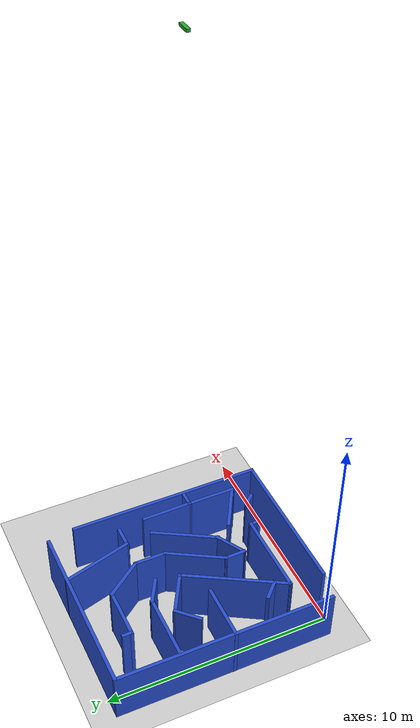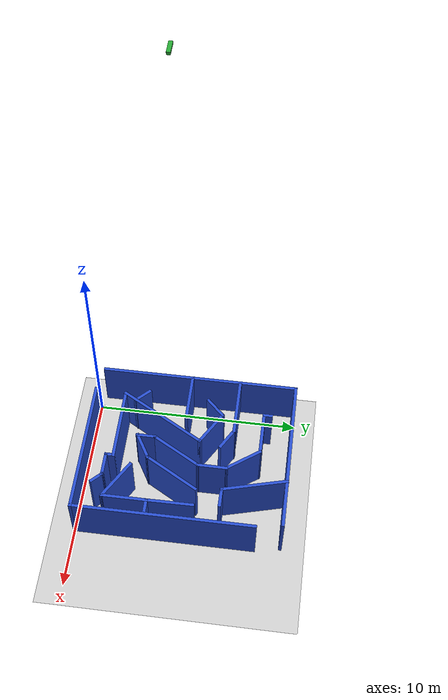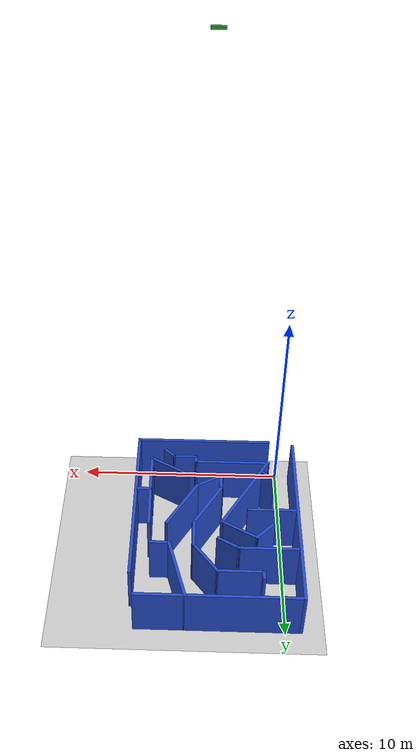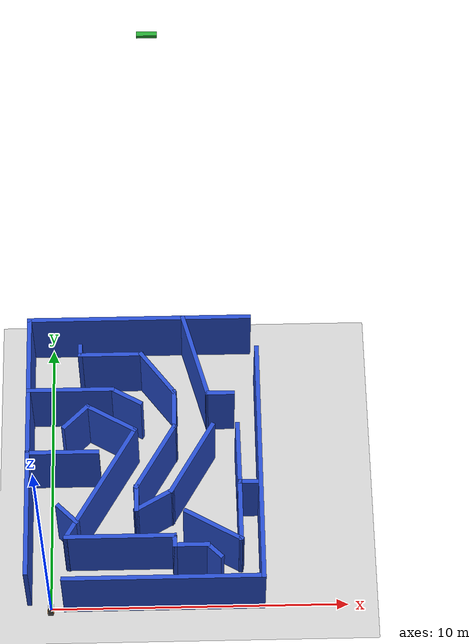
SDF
<sdf version="1.7">
 <world name="default">
  <light name="sun" type="directional">
   <pose>0 0 10 0 -0 0</pose>
   <diffuse>0.8 0.8 0.8 1</diffuse>
   <specular>0.2 0.2 0.2 1</specular>
   <attenuation>
    <range>1000</range>
    <constant>0.9</constant>
    <linear>0.01</linear>
    <quadratic>0.001</quadratic>
   </attenuation>
   <direction>-0.5 0.1 -0.9</direction>
   <spot><inner_angle>0</inner_angle><outer_angle>0</outer_angle><falloff>0</falloff></spot>
  </light>
  <model name="ground_plane">
   <static>1</static>
   <link name="link">
    <collision name="collision">
     <geometry><plane><normal>0 0 1</normal><size>100 100</size></plane></geometry>
     <surface><friction><ode><mu>100</mu><mu2>50</mu2></ode></friction></surface>
    </collision>
    <visual name="visual">
     <cast_shadows>0</cast_shadows>
     <geometry><plane><normal>0 0 1</normal><size>100 100</size></plane></geometry>
     <material>
      <script><uri>file://media/materials/scripts/gazebo.material</uri><name>Gazebo/Grey</name></script>
     </material>
    </visual>
   </link>
  </model>
  <gravity>0 0 -9.8</gravity>
  <magnetic_field>6e-06 2.3e-05 -4.2e-05</magnetic_field>
  <atmosphere type="adiabatic"/>
  <physics type="ode">
   <max_step_size>0.001</max_step_size>
   <real_time_factor>1</real_time_factor>
   <real_time_update_rate>1000</real_time_update_rate>
  </physics>
  <scene><ambient>0.4 0.4 0.4 1</ambient><background>0.7 0.7 0.7 1</background><shadows>0</shadows></scene>
  <spherical_coordinates>
   <surface_model>EARTH_WGS84</surface_model>
   <latitude_deg>0</latitude_deg>
   <longitude_deg>0</longitude_deg>
   <elevation>0</elevation>
   <heading_deg>0</heading_deg>
  </spherical_coordinates>
  <model name="camera">
   <link name="link_0">
    <inertial>
     <mass>0.00707571</mass>
     <inertia>
      <ixx>1.66494e-05</ixx>
      <ixy>0</ixy>
      <ixz>0</ixz>
      <iyy>0.000165453</iyy>
      <iyz>0</iyz>
      <izz>0.000169817</izz>
     </inertia>
    </inertial>
    <visual name="visual">
     <geometry><box><size>0.519789 0.133487 0.102067</size></box></geometry>
     <material>
      <lighting>1</lighting>
      <script><uri>file://media/materials/scripts/gazebo.material</uri><name>Gazebo/Green</name></script>
      <shader type="pixel"/>
     </material>
     <cast_shadows>0</cast_shadows>
    </visual>
    <collision name="collision">
     <geometry><box><size>0.519789 0.133487 0.102067</size></box></geometry>
     <surface>
      <friction>
       <ode><mu>1</mu><mu2>1</mu2><fdir1>0 0 0</fdir1><slip1>0</slip1><slip2>0</slip2></ode>
       <torsional>
        <coefficient>1</coefficient>
        <patch_radius>0</patch_radius>
        <surface_radius>0</surface_radius>
        <use_patch_radius>1</use_patch_radius>
        <ode><slip>0</slip></ode>
       </torsional>
      </friction>
      <bounce><restitution_coefficient>0</restitution_coefficient><threshold>1e+06</threshold></bounce>
      <contact>
       <collide_without_contact>0</collide_without_contact>
       <collide_without_contact_bitmask>1</collide_without_contact_bitmask>
       <collide_bitmask>1</collide_bitmask>
       <ode>
        <soft_cfm>0</soft_cfm>
        <soft_erp>0.2</soft_erp>
        <kp>1e+13</kp>
        <kd>1</kd>
        <max_vel>0.01</max_vel>
        <min_depth>0</min_depth>
       </ode>
       <bullet>
        <split_impulse>1</split_impulse>
        <split_impulse_penetration_threshold>-0.01</split_impulse_penetration_threshold>
        <soft_cfm>0</soft_cfm>
        <soft_erp>0.2</soft_erp>
        <kp>1e+13</kp>
        <kd>1</kd>
       </bullet>
      </contact>
     </surface>
    </collision>
    <sensor name="camera" type="camera">
     <pose>0 0 0 0 1.57 0</pose>
     <always_on>1</always_on>
     <visualize>1</visualize>
     <update_rate>30</update_rate>
     <camera name="Maze_Upper_Camera">
      <horizontal_fov>1.0856</horizontal_fov>
      <image><width>1280</width><height>720</height><format>R8G8B8</format></image>
      <clip><near>0.03</near><far>100</far></clip>
      <noise><type>gaussian</type><mean>0</mean><stddev>0.007</stddev></noise>
     </camera>
     <plugin name="camera_driver" filename="libgazebo_ros_camera.so"/>
    </sensor>
   </link>
   <static>1</static>
   <pose>3.83866 4.77512 25.4161 0 -0 0</pose>
  </model>
  <model name="maze_2">
   <pose>3.19542 4.92683 0 0 -0 0</pose>
   <link name="Wall_12">
    <collision name="Wall_12_Collision">
     <geometry><box><size>8.75 0.15 2.5</size></box></geometry>
     <pose>0 0 1.25 0 -0 0</pose>
    </collision>
    <visual name="Wall_12_Visual">
     <pose>0 0 1.25 0 -0 0</pose>
     <geometry><box><size>8.75 0.15 2.5</size></box></geometry>
     <material>
      <script><uri>file://media/materials/scripts/gazebo.material</uri><name>Gazebo/Blue</name></script>
      <ambient>0.996078 0.47451 0.0196078 1</ambient>
     </material>
     <meta><layer>0</layer></meta>
    </visual>
    <pose>3.92259 -0.630829 0 0 -0 -1.5708</pose>
   </link>
   <link name="Wall_13">
    <collision name="Wall_13_Collision">
     <geometry><box><size>6.75 0.15 2.5</size></box></geometry>
     <pose>0 0 1.25 0 -0 0</pose>
    </collision>
    <visual name="Wall_13_Visual">
     <pose>0 0 1.25 0 -0 0</pose>
     <geometry><box><size>6.75 0.15 2.5</size></box></geometry>
     <material>
      <script><uri>file://media/materials/scripts/gazebo.material</uri><name>Gazebo/Blue</name></script>
      <ambient>0.996078 0.47451 0.0196078 1</ambient>
     </material>
     <meta><layer>0</layer></meta>
    </visual>
    <pose>0.622594 -4.93083 0 0 -0 3.14159</pose>
   </link>
   <link name="Wall_15">
    <collision name="Wall_15_Collision">
     <geometry><box><size>4.75 0.15 2.5</size></box></geometry>
     <pose>0 0 1.25 0 -0 0</pose>
    </collision>
    <visual name="Wall_15_Visual">
     <pose>0 0 1.25 0 -0 0</pose>
     <geometry><box><size>4.75 0.15 2.5</size></box></geometry>
     <material>
      <script><uri>file://media/materials/scripts/gazebo.material</uri><name>Gazebo/Blue</name></script>
      <ambient>0 0 0 1</ambient>
     </material>
     <meta><layer>0</layer></meta>
    </visual>
    <pose>-1.44258 -1.42975 0 0 -0 1.0472</pose>
   </link>
   <link name="Wall_16">
    <collision name="Wall_16_Collision">
     <geometry><box><size>2 0.15 2.5</size></box></geometry>
     <pose>0 0 1.25 0 -0 0</pose>
    </collision>
    <visual name="Wall_16_Visual">
     <pose>0 0 1.25 0 -0 0</pose>
     <geometry><box><size>2 0.15 2.5</size></box></geometry>
     <material>
      <script><uri>file://media/materials/scripts/gazebo.material</uri><name>Gazebo/Blue</name></script>
      <ambient>0 0 0 1</ambient>
     </material>
     <meta><layer>0</layer></meta>
    </visual>
    <pose>-1.09366 1.02461 0 0 -0 2.61799</pose>
   </link>
   <link name="Wall_18">
    <collision name="Wall_18_Collision">
     <geometry><box><size>1 0.15 2.5</size></box></geometry>
     <pose>0 0 1.25 0 -0 0</pose>
    </collision>
    <visual name="Wall_18_Visual">
     <pose>0 0 1.25 0 -0 0</pose>
     <geometry><box><size>1 0.15 2.5</size></box></geometry>
     <material>
      <script><uri>file://media/materials/scripts/gazebo.material</uri><name>Gazebo/Blue</name></script>
      <ambient>0 0 0 1</ambient>
     </material>
     <meta><layer>0</layer></meta>
    </visual>
    <pose>-2.5473 -2.56248 0 0 -0 2.35619</pose>
   </link>
   <link name="Wall_20">
    <collision name="Wall_20_Collision">
     <geometry><box><size>2.5 0.15 2.5</size></box></geometry>
     <pose>0 0 1.25 0 -0 0</pose>
    </collision>
    <visual name="Wall_20_Visual">
     <pose>0 0 1.25 0 -0 0</pose>
     <geometry><box><size>2.5 0.15 2.5</size></box></geometry>
     <material>
      <script><uri>file://media/materials/scripts/gazebo.material</uri><name>Gazebo/Blue</name></script>
      <ambient>0 0 0 1</ambient>
     </material>
     <meta><layer>0</layer></meta>
    </visual>
    <pose>-2.74759 -0.256182 0 0 -0 0</pose>
   </link>
   <link name="Wall_22">
    <collision name="Wall_22_Collision">
     <geometry><box><size>1.25 0.15 2.5</size></box></geometry>
     <pose>0 0 1.25 0 -0 0</pose>
    </collision>
    <visual name="Wall_22_Visual">
     <pose>0 0 1.25 0 -0 0</pose>
     <geometry><box><size>1.25 0.15 2.5</size></box></geometry>
     <material>
      <script><uri>file://media/materials/scripts/gazebo.material</uri><name>Gazebo/Blue</name></script>
      <ambient>0 0 0 1</ambient>
     </material>
     <meta><layer>0</layer></meta>
    </visual>
    <pose>-2.28364 1.0982 0 0 -0 -2.35619</pose>
   </link>
   <link name="Wall_24">
    <collision name="Wall_24_Collision">
     <geometry><box><size>3 0.15 2.5</size></box></geometry>
     <pose>0 0 1.25 0 -0 0</pose>
    </collision>
    <visual name="Wall_24_Visual">
     <pose>0 0 1.25 0 -0 0</pose>
     <geometry><box><size>3 0.15 2.5</size></box></geometry>
     <material>
      <script><uri>file://media/materials/scripts/gazebo.material</uri><name>Gazebo/Blue</name></script>
      <ambient>0 0 0 1</ambient>
     </material>
     <meta><layer>0</layer></meta>
    </visual>
    <pose>-2.48295 2.1404 0 0 -0 0</pose>
   </link>
   <link name="Wall_25">
    <collision name="Wall_25_Collision">
     <geometry><box><size>1.25 0.15 2.5</size></box></geometry>
     <pose>0 0 1.25 0 -0 0</pose>
    </collision>
    <visual name="Wall_25_Visual">
     <pose>0 0 1.25 0 -0 0</pose>
     <geometry><box><size>1.25 0.15 2.5</size></box></geometry>
     <material>
      <script><uri>file://media/materials/scripts/gazebo.material</uri><name>Gazebo/Blue</name></script>
      <ambient>0 0 0 1</ambient>
     </material>
     <meta><layer>0</layer></meta>
    </visual>
    <pose>-0.581633 1.8654 0 0 -0 -0.523599</pose>
   </link>
   <link name="Wall_27">
    <collision name="Wall_27_Collision">
     <geometry><box><size>3.75 0.15 2.5</size></box></geometry>
     <pose>0 0 1.25 0 -0 0</pose>
    </collision>
    <visual name="Wall_27_Visual">
     <pose>0 0 1.25 0 -0 0</pose>
     <geometry><box><size>3.75 0.15 2.5</size></box></geometry>
     <material>
      <script><uri>file://media/materials/scripts/gazebo.material</uri><name>Gazebo/Blue</name></script>
      <ambient>0 0 0 1</ambient>
     </material>
     <meta><layer>0</layer></meta>
    </visual>
    <pose>-0.792584 -3.42161 0 0 -0 0</pose>
   </link>
   <link name="Wall_29">
    <collision name="Wall_29_Collision">
     <geometry><box><size>0.5 0.15 2.5</size></box></geometry>
     <pose>0 0 1.25 0 -0 0</pose>
    </collision>
    <visual name="Wall_29_Visual">
     <pose>0 0 1.25 0 -0 0</pose>
     <geometry><box><size>0.5 0.15 2.5</size></box></geometry>
     <material>
      <script><uri>file://media/materials/scripts/gazebo.material</uri><name>Gazebo/Blue</name></script>
      <ambient>0 0 0 1</ambient>
     </material>
     <meta><layer>0</layer></meta>
    </visual>
    <pose>1.00742 -3.59661 0 0 -0 -1.5708</pose>
   </link>
   <link name="Wall_3">
    <collision name="Wall_3_Collision">
     <geometry><box><size>9.75 0.15 2.5</size></box></geometry>
     <pose>0 0 1.25 0 -0 0</pose>
    </collision>
    <visual name="Wall_3_Visual">
     <pose>0 0 1.25 0 -0 0</pose>
     <geometry><box><size>9.75 0.15 2.5</size></box></geometry>
     <material>
      <script><uri>file://media/materials/scripts/gazebo.material</uri><name>Gazebo/Blue</name></script>
      <ambient>0.996078 0.47451 0.0196078 1</ambient>
     </material>
     <meta><layer>0</layer></meta>
    </visual>
    <pose>-3.91589 0.119305 0 0 -0 1.5708</pose>
   </link>
   <link name="Wall_30">
    <collision name="Wall_30_Collision">
     <geometry><box><size>1.25 0.15 2.5</size></box></geometry>
     <pose>0 0 1.25 0 -0 0</pose>
    </collision>
    <visual name="Wall_30_Visual">
     <pose>0 0 1.25 0 -0 0</pose>
     <geometry><box><size>1.25 0.15 2.5</size></box></geometry>
     <material>
      <script><uri>file://media/materials/scripts/gazebo.material</uri><name>Gazebo/Blue</name></script>
      <ambient>0 0 0 1</ambient>
     </material>
     <meta><layer>0</layer></meta>
    </visual>
    <pose>1.55741 -3.77161 0 0 -0 0</pose>
   </link>
   <link name="Wall_31">
    <collision name="Wall_31_Collision">
     <geometry><box><size>0.75 0.15 2.5</size></box></geometry>
     <pose>0 0 1.25 0 -0 0</pose>
    </collision>
    <visual name="Wall_31_Visual">
     <pose>0 0 1.25 0 -0 0</pose>
     <geometry><box><size>0.75 0.15 2.5</size></box></geometry>
     <material>
      <script><uri>file://media/materials/scripts/gazebo.material</uri><name>Gazebo/Blue</name></script>
      <ambient>0 0 0 1</ambient>
     </material>
     <meta><layer>0</layer></meta>
    </visual>
    <pose>2.31955 -3.98374 0 0 -0 -0.785398</pose>
   </link>
   <link name="Wall_34">
    <collision name="Wall_34_Collision">
     <geometry><box><size>2.25 0.15 2.5</size></box></geometry>
     <pose>0 0 1.25 0 -0 0</pose>
    </collision>
    <visual name="Wall_34_Visual">
     <pose>0 0 1.25 0 -0 0</pose>
     <geometry><box><size>2.25 0.15 2.5</size></box></geometry>
     <material>
      <script><uri>file://media/materials/scripts/gazebo.material</uri><name>Gazebo/Blue</name></script>
      <ambient>0 0 0 1</ambient>
     </material>
     <meta><layer>0</layer></meta>
    </visual>
    <pose>2.30704 -3.05659 0 0 -0 -0.523599</pose>
   </link>
   <link name="Wall_35">
    <collision name="Wall_35_Collision">
     <geometry><box><size>2.25 0.15 2.5</size></box></geometry>
     <pose>0 0 1.25 0 -0 0</pose>
    </collision>
    <visual name="Wall_35_Visual">
     <pose>0 0 1.25 0 -0 0</pose>
     <geometry><box><size>2.25 0.15 2.5</size></box></geometry>
     <material>
      <script><uri>file://media/materials/scripts/gazebo.material</uri><name>Gazebo/Blue</name></script>
      <ambient>0 0 0 1</ambient>
     </material>
     <meta><layer>0</layer></meta>
    </visual>
    <pose>3.21637 -2.53159 0 0 -0 1.5708</pose>
   </link>
   <link name="Wall_36">
    <collision name="Wall_36_Collision">
     <geometry><box><size>0.75 0.15 2.5</size></box></geometry>
     <pose>0 0 1.25 0 -0 0</pose>
    </collision>
    <visual name="Wall_36_Visual">
     <pose>0 0 1.25 0 -0 0</pose>
     <geometry><box><size>0.75 0.15 2.5</size></box></geometry>
     <material>
      <script><uri>file://media/materials/scripts/gazebo.material</uri><name>Gazebo/Blue</name></script>
      <ambient>0 0 0 1</ambient>
     </material>
     <meta><layer>0</layer></meta>
    </visual>
    <pose>3.51636 -1.48159 0 0 -0 0</pose>
   </link>
   <link name="Wall_39">
    <collision name="Wall_39_Collision">
     <geometry><box><size>1.5 0.15 2.5</size></box></geometry>
     <pose>0 0 1.25 0 -0 0</pose>
    </collision>
    <visual name="Wall_39_Visual">
     <pose>0 0 1.25 0 -0 0</pose>
     <geometry><box><size>1.5 0.15 2.5</size></box></geometry>
     <material>
      <script><uri>file://media/materials/scripts/gazebo.material</uri><name>Gazebo/Blue</name></script>
      <ambient>0 0 0 1</ambient>
     </material>
     <meta><layer>0</layer></meta>
    </visual>
    <pose>0.331293 -2.11272 0 0 -0 -2.61799</pose>
   </link>
   <link name="Wall_41">
    <collision name="Wall_41_Collision">
     <geometry><box><size>1 0.15 2.5</size></box></geometry>
     <pose>0 0 1.25 0 -0 0</pose>
    </collision>
    <visual name="Wall_41_Visual">
     <pose>0 0 1.25 0 -0 0</pose>
     <geometry><box><size>1 0.15 2.5</size></box></geometry>
     <material>
      <script><uri>file://media/materials/scripts/gazebo.material</uri><name>Gazebo/Blue</name></script>
      <ambient>0 0 0 1</ambient>
     </material>
     <meta><layer>0</layer></meta>
    </visual>
    <pose>-0.253274 -2.02522 0 0 -0 1.5708</pose>
   </link>
   <link name="Wall_42">
    <collision name="Wall_42_Collision">
     <geometry><box><size>2.75 0.15 2.5</size></box></geometry>
     <pose>0 0 1.25 0 -0 0</pose>
    </collision>
    <visual name="Wall_42_Visual">
     <pose>0 0 1.25 0 -0 0</pose>
     <geometry><box><size>2.75 0.15 2.5</size></box></geometry>
     <material>
      <script><uri>file://media/materials/scripts/gazebo.material</uri><name>Gazebo/Blue</name></script>
      <ambient>0 0 0 1</ambient>
     </material>
     <meta><layer>0</layer></meta>
    </visual>
    <pose>0.396726 -0.474385 0 0 -0 1.0472</pose>
   </link>
   <link name="Wall_44">
    <collision name="Wall_44_Collision">
     <geometry><box><size>3 0.15 2.5</size></box></geometry>
     <pose>0 0 1.25 0 -0 0</pose>
    </collision>
    <visual name="Wall_44_Visual">
     <pose>0 0 1.25 0 -0 0</pose>
     <geometry><box><size>3 0.15 2.5</size></box></geometry>
     <material>
      <script><uri>file://media/materials/scripts/gazebo.material</uri><name>Gazebo/Blue</name></script>
      <ambient>0 0 0 1</ambient>
     </material>
     <meta><layer>0</layer></meta>
    </visual>
    <pose>1.62836 -0.541132 0 0 -0 1.0472</pose>
   </link>
   <link name="Wall_46">
    <collision name="Wall_46_Collision">
     <geometry><box><size>2.32469 0.15 2.5</size></box></geometry>
     <pose>0 0 1.25 0 -0 0</pose>
    </collision>
    <visual name="Wall_46_Visual">
     <pose>0 0 1.25 0 -0 0</pose>
     <geometry><box><size>2.32469 0.15 2.5</size></box></geometry>
     <material>
      <script><uri>file://media/materials/scripts/gazebo.material</uri><name>Gazebo/Blue</name></script>
      <ambient>0 0 0 1</ambient>
     </material>
     <meta><layer>0</layer></meta>
    </visual>
    <pose>3.20361 -0.394318 0 0 -0 -1.55907</pose>
   </link>
   <link name="Wall_48">
    <collision name="Wall_48_Collision">
     <geometry><box><size>1.5 0.15 2.5</size></box></geometry>
     <pose>0 0 1.25 0 -0 0</pose>
    </collision>
    <visual name="Wall_48_Visual">
     <pose>0 0 1.25 0 -0 0</pose>
     <geometry><box><size>1.5 0.15 2.5</size></box></geometry>
     <material>
      <script><uri>file://media/materials/scripts/gazebo.material</uri><name>Gazebo/Blue</name></script>
      <ambient>0 0 0 1</ambient>
     </material>
     <meta><layer>0</layer></meta>
    </visual>
    <pose>1.04673 1.32645 0 0 -0 1.5708</pose>
   </link>
   <link name="Wall_49">
    <collision name="Wall_49_Collision">
     <geometry><box><size>2.01011 0.15 2.5</size></box></geometry>
     <pose>0 0 1.25 0 -0 0</pose>
    </collision>
    <visual name="Wall_49_Visual">
     <pose>0 0 1.25 0 -0 0</pose>
     <geometry><box><size>2.01011 0.15 2.5</size></box></geometry>
     <material>
      <script><uri>file://media/materials/scripts/gazebo.material</uri><name>Gazebo/Blue</name></script>
      <ambient>0 0 0 1</ambient>
     </material>
     <meta><layer>0</layer></meta>
    </visual>
    <pose>0.496726 2.75145 0 0 -0 2.20355</pose>
   </link>
   <link name="Wall_50">
    <collision name="Wall_50_Collision">
     <geometry><box><size>2.25 0.15 2.5</size></box></geometry>
     <pose>0 0 1.25 0 -0 0</pose>
    </collision>
    <visual name="Wall_50_Visual">
     <pose>0 0 1.25 0 -0 0</pose>
     <geometry><box><size>2.25 0.15 2.5</size></box></geometry>
     <material>
      <script><uri>file://media/materials/scripts/gazebo.material</uri><name>Gazebo/Blue</name></script>
      <ambient>0 0 0 1</ambient>
     </material>
     <meta><layer>0</layer></meta>
    </visual>
    <pose>-1.10327 3.50145 0 0 -0 3.14159</pose>
   </link>
   <link name="Wall_51">
    <collision name="Wall_51_Collision">
     <geometry><box><size>0.5 0.15 2.5</size></box></geometry>
     <pose>0 0 1.25 0 -0 0</pose>
    </collision>
    <visual name="Wall_51_Visual">
     <pose>0 0 1.25 0 -0 0</pose>
     <geometry><box><size>0.5 0.15 2.5</size></box></geometry>
     <material>
      <script><uri>file://media/materials/scripts/gazebo.material</uri><name>Gazebo/Blue</name></script>
      <ambient>0 0 0 1</ambient>
     </material>
     <meta><layer>0</layer></meta>
    </visual>
    <pose>-2.15327 3.67645 0 0 -0 1.5708</pose>
   </link>
   <link name="Wall_54">
    <collision name="Wall_54_Collision">
     <geometry><box><size>3.25 0.15 2.5</size></box></geometry>
     <pose>0 0 1.25 0 -0 0</pose>
    </collision>
    <visual name="Wall_54_Visual">
     <pose>0 0 1.25 0 -0 0</pose>
     <geometry><box><size>3.25 0.15 2.5</size></box></geometry>
     <material>
      <script><uri>file://media/materials/scripts/gazebo.material</uri><name>Gazebo/Blue</name></script>
      <ambient>0 0 0 1</ambient>
     </material>
     <meta><layer>0</layer></meta>
    </visual>
    <pose>1.79815 3.41679 0 0 -0 -1.309</pose>
   </link>
   <link name="Wall_55">
    <collision name="Wall_55_Collision">
     <geometry><box><size>1 0.15 2.5</size></box></geometry>
     <pose>0 0 1.25 0 -0 0</pose>
    </collision>
    <visual name="Wall_55_Visual">
     <pose>0 0 1.25 0 -0 0</pose>
     <geometry><box><size>1 0.15 2.5</size></box></geometry>
     <material>
      <script><uri>file://media/materials/scripts/gazebo.material</uri><name>Gazebo/Blue</name></script>
      <ambient>0 0 0 1</ambient>
     </material>
     <meta><layer>0</layer></meta>
    </visual>
    <pose>2.62432 1.9196 0 0 -0 0</pose>
   </link>
   <link name="Wall_8">
    <collision name="Wall_8_Collision">
     <geometry><box><size>7.75 0.15 2.5</size></box></geometry>
     <pose>0 0 1.25 0 -0 0</pose>
    </collision>
    <visual name="Wall_8_Visual">
     <pose>0 0 1.25 0 -0 0</pose>
     <geometry><box><size>7.75 0.15 2.5</size></box></geometry>
     <material>
      <script><uri>file://media/materials/scripts/gazebo.material</uri><name>Gazebo/Blue</name></script>
      <ambient>0.996078 0.47451 0.0196078 1</ambient>
     </material>
     <meta><layer>0</layer></meta>
    </visual>
    <pose>-0.115891 4.9193 0 0 -0 0</pose>
   </link>
   <static>1</static>
  </model>
  <model name="maze_bot">
   <link name="base_footprint">
    <inertial>
     <pose>0 0 0.1 0 -0 0</pose>
     <mass>2</mass>
     <inertia><ixx>0.00355</ixx><ixy>0</ixy><ixz>0</ixz><iyy>0.01265</iyy><iyz>0</iyz><izz>0.013832</izz></inertia>
    </inertial>
    <collision name="base_footprint_fixed_joint_lump__base_collision">
     <geometry><mesh><scale>1 1 1</scale><uri>model://maze_bot/meshes/base_link.stl</uri></mesh></geometry>
    </collision>
    <visual name="base_footprint_fixed_joint_lump__base_visual">
     <geometry><mesh><scale>1 1 1</scale><uri>model://maze_bot/meshes/base_link.stl</uri></mesh></geometry>
     <material>
      <script><name>Gazebo/Black</name><uri>file://media/materials/scripts/gazebo.material</uri></script>
     </material>
    </visual>
    <sensor name="Botcamera" type="camera">
     <update_rate>30</update_rate>
     <camera name="head">
      <horizontal_fov>1.39626</horizontal_fov>
      <image><width>800</width><height>800</height><format>R8G8B8</format></image>
      <clip><near>0.02</near><far>300</far></clip>
      <noise><type>gaussian</type><mean>0</mean><stddev>0.007</stddev></noise>
     </camera>
     <plugin name="camera_controller" filename="libgazebo_ros_camera.so">
      <alwaysOn>1</alwaysOn>
      <updateRate>0.0</updateRate>
      <cameraName>/Botcamera</cameraName>
      <imageTopicName>image_raw</imageTopicName>
      <cameraInfoTopicName>camera_info</cameraInfoTopicName>
      <frameName>camera_link</frameName>
      <hackBaseline>0.07</hackBaseline>
     </plugin>
     <pose>-0.16 0 0.08 0 -0 3.14</pose>
    </sensor>
   </link>
   <joint name="caster_joint" type="revolute">
    <pose relative_to="base_footprint">-0.14 -0.007 -0.03 0 -0 0</pose>
    <parent>base_footprint</parent>
    <child>caster</child>
    <axis>
     <xyz>0 0 1</xyz>
     <limit><lower>-1e+16</lower><upper>1e+16</upper></limit>
     <dynamics><spring_reference>0</spring_reference><spring_stiffness>0</spring_stiffness></dynamics>
    </axis>
   </joint>
   <link name="caster">
    <pose relative_to="caster_joint">0 0 0 0 -0 0</pose>
    <inertial>
     <mass>0.75</mass>
     <inertia>
      <ixx>0.0001295</ixx>
      <ixy>0</ixy>
      <ixz>0</ixz>
      <iyy>0.0001295</iyy>
      <iyz>0</iyz>
      <izz>0.000199322</izz>
     </inertia>
    </inertial>
    <collision name="caster_collision">
     <geometry><mesh><scale>1 1 1</scale><uri>model://maze_bot/meshes/front_caster.stl</uri></mesh></geometry>
    </collision>
    <visual name="caster_visual">
     <geometry><mesh><scale>1 1 1</scale><uri>model://maze_bot/meshes/front_caster.stl</uri></mesh></geometry>
     <material>
      <script><name>Gazebo/White</name><uri>file://media/materials/scripts/gazebo.material</uri></script>
     </material>
    </visual>
   </link>
   <joint name="wheel_left_joint" type="revolute">
    <pose relative_to="base_footprint">0.09 -0.1 0.04 0 -0 3.14</pose>
    <parent>base_footprint</parent>
    <child>wheel_left</child>
    <axis>
     <xyz>0 1 0</xyz>
     <limit><lower>-1e+16</lower><upper>1e+16</upper></limit>
     <dynamics><spring_reference>0</spring_reference><spring_stiffness>0</spring_stiffness></dynamics>
    </axis>
   </joint>
   <link name="wheel_left">
    <pose relative_to="wheel_left_joint">0 0 0 0 -0 0</pose>
    <inertial>
     <mass>0.75</mass>
     <inertia>
      <ixx>0.00144422</ixx>
      <ixy>0</ixy>
      <ixz>0</ixz>
      <iyy>0.00280875</iyy>
      <iyz>0</iyz>
      <izz>0.00144422</izz>
     </inertia>
    </inertial>
    <collision name="wheel_left_collision">
     <geometry><mesh><scale>1 1 1</scale><uri>model://maze_bot/meshes/wheel_l.stl</uri></mesh></geometry>
    </collision>
    <visual name="wheel_left_visual">
     <geometry><mesh><scale>1 1 1</scale><uri>model://maze_bot/meshes/wheel_l.stl</uri></mesh></geometry>
     <material>
      <script><name>Gazebo/Orange</name><uri>file://media/materials/scripts/gazebo.material</uri></script>
     </material>
    </visual>
   </link>
   <joint name="wheel_right_joint" type="revolute">
    <pose relative_to="base_footprint">0.09 0.085 0.04 0 -0 0</pose>
    <parent>base_footprint</parent>
    <child>wheel_right</child>
    <axis>
     <xyz>0 -1 0</xyz>
     <limit><lower>-1e+16</lower><upper>1e+16</upper></limit>
     <dynamics><spring_reference>0</spring_reference><spring_stiffness>0</spring_stiffness></dynamics>
    </axis>
   </joint>
   <link name="wheel_right">
    <pose relative_to="wheel_right_joint">0 0 0 0 -0 0</pose>
    <inertial>
     <mass>0.75</mass>
     <inertia>
      <ixx>0.00144422</ixx>
      <ixy>0</ixy>
      <ixz>0</ixz>
      <iyy>0.00280875</iyy>
      <iyz>0</iyz>
      <izz>0.00144422</izz>
     </inertia>
    </inertial>
    <collision name="wheel_right_collision">
     <geometry><mesh><scale>1 1 1</scale><uri>model://maze_bot/meshes/wheel_r.stl</uri></mesh></geometry>
    </collision>
    <visual name="wheel_right_visual">
     <geometry><mesh><scale>1 1 1</scale><uri>model://maze_bot/meshes/wheel_r.stl</uri></mesh></geometry>
     <material>
      <script><name>Gazebo/Orange</name><uri>file://media/materials/scripts/gazebo.material</uri></script>
     </material>
    </visual>
   </link>
   <static>0</static>
   <plugin name="gazebo_base_controller" filename="libgazebo_ros_diff_drive.so">
    <odometry_frame>odom</odometry_frame>
    <commandTopic>cmd_vel</commandTopic>
    <publish_odom>1</publish_odom>
    <publish_odom_tf>1</publish_odom_tf>
    <update_rate>15.0</update_rate>
    <left_joint>wheel_left_joint</left_joint>
    <right_joint>wheel_right_joint</right_joint>
    <wheel_separation>0.8</wheel_separation>
    <wheel_diameter>0.3</wheel_diameter>
    <max_wheel_acceleration>0.7</max_wheel_acceleration>
    <robotBaseFrame>base</robotBaseFrame>
   </plugin>
   <pose>0.002559 -0.00792 0.035356 -0.000855 0.059781 -1.57834</pose>
  </model>
 </world>
</sdf>
